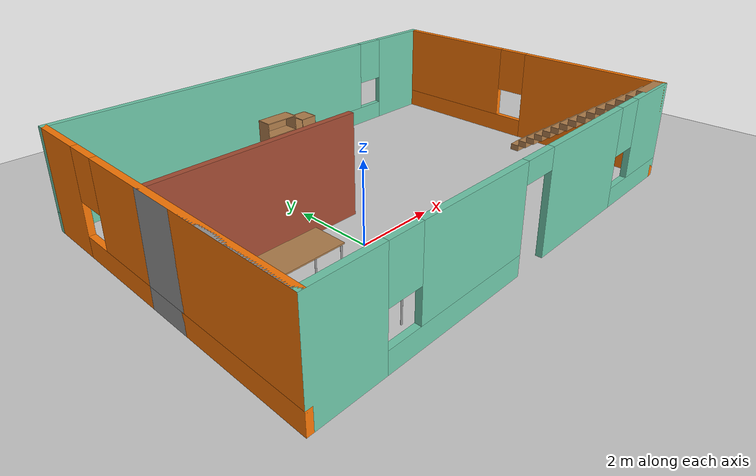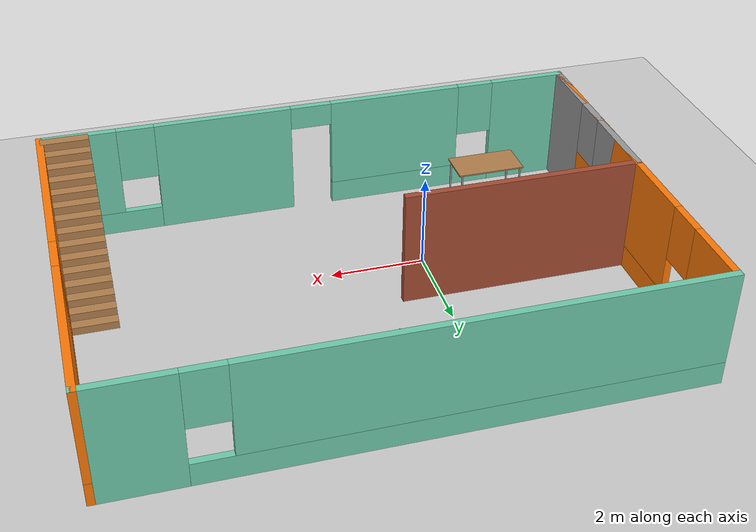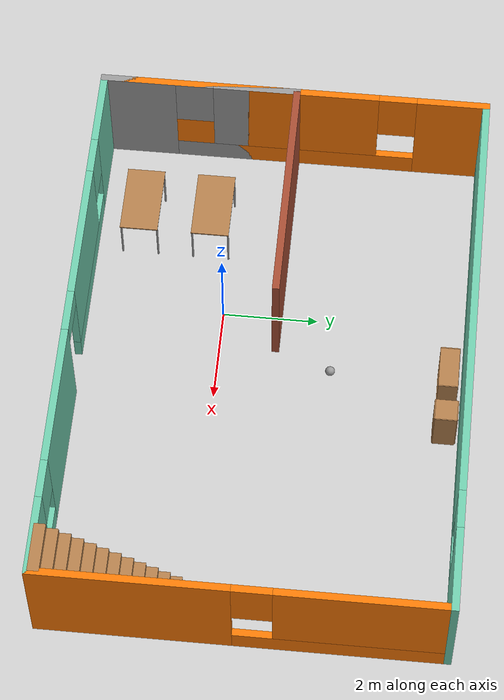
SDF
<sdf version="1.6">
 <world name="default">
  <plugin name="hello" filename="libhello.so"/>
  <light name="sun" type="directional">
   <pose>0 0 10 0 -0 0</pose>
   <diffuse>0.8 0.8 0.8 1</diffuse>
   <specular>0.2 0.2 0.2 1</specular>
   <attenuation>
    <range>1000</range>
    <constant>0.9</constant>
    <linear>0.01</linear>
    <quadratic>0.001</quadratic>
   </attenuation>
   <direction>-0.5 0.1 -0.9</direction>
  </light>
  <model name="ground_plane">
   <static>1</static>
   <link name="link">
    <collision name="collision">
     <geometry><plane><normal>0 0 1</normal><size>100 100</size></plane></geometry>
     <surface>
      <contact><collide_bitmask>65535</collide_bitmask></contact>
      <friction><ode><mu>100</mu><mu2>50</mu2></ode></friction>
     </surface>
    </collision>
    <visual name="visual">
     <cast_shadows>0</cast_shadows>
     <geometry><plane><normal>0 0 1</normal><size>100 100</size></plane></geometry>
     <material>
      <script><uri>file://media/materials/scripts/gazebo.material</uri><name>Gazebo/Grey</name></script>
     </material>
    </visual>
   </link>
  </model>
  <gravity>0 0 -9.8</gravity>
  <magnetic_field>6e-06 2.3e-05 -4.2e-05</magnetic_field>
  <atmosphere type="adiabatic"/>
  <physics name="default_physics" default="0" type="ode">
   <max_step_size>0.001</max_step_size>
   <real_time_factor>1</real_time_factor>
   <real_time_update_rate>1000</real_time_update_rate>
  </physics>
  <scene><ambient>0.4 0.4 0.4 1</ambient><background>0.7 0.7 0.7 1</background><shadows>1</shadows></scene>
  <audio><device>default</device></audio>
  <spherical_coordinates>
   <surface_model>EARTH_WGS84</surface_model>
   <latitude_deg>0</latitude_deg>
   <longitude_deg>0</longitude_deg>
   <elevation>0</elevation>
   <heading_deg>0</heading_deg>
  </spherical_coordinates>
  <model name="Wall">
   <pose>1.69 1.13 0 0 -0 0</pose>
   <link name="Stairs_0">
    <visual name="Stairs_0_Visual_0">
     <pose>5.29734 -0.669935 0.083333 0 -0 0</pose>
     <geometry><box><size>1 0.233333 0.166667</size></box></geometry>
     <material>
      <script><uri>file://media/materials/scripts/gazebo.material</uri><name>Gazebo/Wood</name></script>
      <ambient>1 1 1 1</ambient>
     </material>
     <meta><layer>0</layer></meta>
    </visual>
    <collision name="Stairs_0_Collision_0">
     <geometry><box><size>1 0.233333 0.166667</size></box></geometry>
     <pose>5.29734 -0.669935 0.083333 0 -0 0</pose>
    </collision>
    <visual name="Stairs_0_Visual_1">
     <pose>5.29734 -0.903268 0.25 0 -0 0</pose>
     <geometry><box><size>1 0.233333 0.166667</size></box></geometry>
     <material>
      <script><uri>file://media/materials/scripts/gazebo.material</uri><name>Gazebo/Wood</name></script>
      <ambient>1 1 1 1</ambient>
     </material>
     <meta><layer>0</layer></meta>
    </visual>
    <collision name="Stairs_0_Collision_1">
     <geometry><box><size>1 0.233333 0.166667</size></box></geometry>
     <pose>5.29734 -0.903268 0.25 0 -0 0</pose>
    </collision>
    <visual name="Stairs_0_Visual_2">
     <pose>5.29734 -1.1366 0.416667 0 -0 0</pose>
     <geometry><box><size>1 0.233333 0.166667</size></box></geometry>
     <material>
      <script><uri>file://media/materials/scripts/gazebo.material</uri><name>Gazebo/Wood</name></script>
      <ambient>1 1 1 1</ambient>
     </material>
     <meta><layer>0</layer></meta>
    </visual>
    <collision name="Stairs_0_Collision_2">
     <geometry><box><size>1 0.233333 0.166667</size></box></geometry>
     <pose>5.29734 -1.1366 0.416667 0 -0 0</pose>
    </collision>
    <visual name="Stairs_0_Visual_3">
     <pose>5.29734 -1.36993 0.583333 0 -0 0</pose>
     <geometry><box><size>1 0.233333 0.166667</size></box></geometry>
     <material>
      <script><uri>file://media/materials/scripts/gazebo.material</uri><name>Gazebo/Wood</name></script>
      <ambient>1 1 1 1</ambient>
     </material>
     <meta><layer>0</layer></meta>
    </visual>
    <collision name="Stairs_0_Collision_3">
     <geometry><box><size>1 0.233333 0.166667</size></box></geometry>
     <pose>5.29734 -1.36993 0.583333 0 -0 0</pose>
    </collision>
    <visual name="Stairs_0_Visual_4">
     <pose>5.29734 -1.60327 0.75 0 -0 0</pose>
     <geometry><box><size>1 0.233333 0.166667</size></box></geometry>
     <material>
      <script><uri>file://media/materials/scripts/gazebo.material</uri><name>Gazebo/Wood</name></script>
      <ambient>1 1 1 1</ambient>
     </material>
     <meta><layer>0</layer></meta>
    </visual>
    <collision name="Stairs_0_Collision_4">
     <geometry><box><size>1 0.233333 0.166667</size></box></geometry>
     <pose>5.29734 -1.60327 0.75 0 -0 0</pose>
    </collision>
    <visual name="Stairs_0_Visual_5">
     <pose>5.29734 -1.8366 0.916667 0 -0 0</pose>
     <geometry><box><size>1 0.233333 0.166667</size></box></geometry>
     <material>
      <script><uri>file://media/materials/scripts/gazebo.material</uri><name>Gazebo/Wood</name></script>
      <ambient>1 1 1 1</ambient>
     </material>
     <meta><layer>0</layer></meta>
    </visual>
    <collision name="Stairs_0_Collision_5">
     <geometry><box><size>1 0.233333 0.166667</size></box></geometry>
     <pose>5.29734 -1.8366 0.916667 0 -0 0</pose>
    </collision>
    <visual name="Stairs_0_Visual_6">
     <pose>5.29734 -2.06994 1.08333 0 -0 0</pose>
     <geometry><box><size>1 0.233333 0.166667</size></box></geometry>
     <material>
      <script><uri>file://media/materials/scripts/gazebo.material</uri><name>Gazebo/Wood</name></script>
      <ambient>1 1 1 1</ambient>
     </material>
     <meta><layer>0</layer></meta>
    </visual>
    <collision name="Stairs_0_Collision_6">
     <geometry><box><size>1 0.233333 0.166667</size></box></geometry>
     <pose>5.29734 -2.06994 1.08333 0 -0 0</pose>
    </collision>
    <visual name="Stairs_0_Visual_7">
     <pose>5.29734 -2.30327 1.25 0 -0 0</pose>
     <geometry><box><size>1 0.233333 0.166667</size></box></geometry>
     <material>
      <script><uri>file://media/materials/scripts/gazebo.material</uri><name>Gazebo/Wood</name></script>
      <ambient>1 1 1 1</ambient>
     </material>
     <meta><layer>0</layer></meta>
    </visual>
    <collision name="Stairs_0_Collision_7">
     <geometry><box><size>1 0.233333 0.166667</size></box></geometry>
     <pose>5.29734 -2.30327 1.25 0 -0 0</pose>
    </collision>
    <visual name="Stairs_0_Visual_8">
     <pose>5.29734 -2.5366 1.41667 0 -0 0</pose>
     <geometry><box><size>1 0.233333 0.166667</size></box></geometry>
     <material>
      <script><uri>file://media/materials/scripts/gazebo.material</uri><name>Gazebo/Wood</name></script>
      <ambient>1 1 1 1</ambient>
     </material>
     <meta><layer>0</layer></meta>
    </visual>
    <collision name="Stairs_0_Collision_8">
     <geometry><box><size>1 0.233333 0.166667</size></box></geometry>
     <pose>5.29734 -2.5366 1.41667 0 -0 0</pose>
    </collision>
    <visual name="Stairs_0_Visual_9">
     <pose>5.29734 -2.76993 1.58333 0 -0 0</pose>
     <geometry><box><size>1 0.233333 0.166667</size></box></geometry>
     <material>
      <script><uri>file://media/materials/scripts/gazebo.material</uri><name>Gazebo/Wood</name></script>
      <ambient>1 1 1 1</ambient>
     </material>
     <meta><layer>0</layer></meta>
    </visual>
    <collision name="Stairs_0_Collision_9">
     <geometry><box><size>1 0.233333 0.166667</size></box></geometry>
     <pose>5.29734 -2.76993 1.58333 0 -0 0</pose>
    </collision>
    <visual name="Stairs_0_Visual_10">
     <pose>5.29734 -3.00327 1.75 0 -0 0</pose>
     <geometry><box><size>1 0.233333 0.166667</size></box></geometry>
     <material>
      <script><uri>file://media/materials/scripts/gazebo.material</uri><name>Gazebo/Wood</name></script>
      <ambient>1 1 1 1</ambient>
     </material>
     <meta><layer>0</layer></meta>
    </visual>
    <collision name="Stairs_0_Collision_10">
     <geometry><box><size>1 0.233333 0.166667</size></box></geometry>
     <pose>5.29734 -3.00327 1.75 0 -0 0</pose>
    </collision>
    <visual name="Stairs_0_Visual_11">
     <pose>5.29734 -3.2366 1.91667 0 -0 0</pose>
     <geometry><box><size>1 0.233333 0.166667</size></box></geometry>
     <material>
      <script><uri>file://media/materials/scripts/gazebo.material</uri><name>Gazebo/Wood</name></script>
      <ambient>1 1 1 1</ambient>
     </material>
     <meta><layer>0</layer></meta>
    </visual>
    <collision name="Stairs_0_Collision_11">
     <geometry><box><size>1 0.233333 0.166667</size></box></geometry>
     <pose>5.29734 -3.2366 1.91667 0 -0 0</pose>
    </collision>
    <visual name="Stairs_0_Visual_12">
     <pose>5.29734 -3.46993 2.08333 0 -0 0</pose>
     <geometry><box><size>1 0.233333 0.166667</size></box></geometry>
     <material>
      <script><uri>file://media/materials/scripts/gazebo.material</uri><name>Gazebo/Wood</name></script>
      <ambient>1 1 1 1</ambient>
     </material>
     <meta><layer>0</layer></meta>
    </visual>
    <collision name="Stairs_0_Collision_12">
     <geometry><box><size>1 0.233333 0.166667</size></box></geometry>
     <pose>5.29734 -3.46993 2.08333 0 -0 0</pose>
    </collision>
    <visual name="Stairs_0_Visual_13">
     <pose>5.29734 -3.70327 2.25 0 -0 0</pose>
     <geometry><box><size>1 0.233333 0.166667</size></box></geometry>
     <material>
      <script><uri>file://media/materials/scripts/gazebo.material</uri><name>Gazebo/Wood</name></script>
      <ambient>1 1 1 1</ambient>
     </material>
     <meta><layer>0</layer></meta>
    </visual>
    <collision name="Stairs_0_Collision_13">
     <geometry><box><size>1 0.233333 0.166667</size></box></geometry>
     <pose>5.29734 -3.70327 2.25 0 -0 0</pose>
    </collision>
    <visual name="Stairs_0_Visual_14">
     <pose>5.29734 -3.9366 2.41667 0 -0 0</pose>
     <geometry><box><size>1 0.233333 0.166667</size></box></geometry>
     <material>
      <script><uri>file://media/materials/scripts/gazebo.material</uri><name>Gazebo/Wood</name></script>
      <ambient>1 1 1 1</ambient>
     </material>
     <meta><layer>0</layer></meta>
    </visual>
    <collision name="Stairs_0_Collision_14">
     <geometry><box><size>1 0.233333 0.166667</size></box></geometry>
     <pose>5.29734 -3.9366 2.41667 0 -0 0</pose>
    </collision>
   </link>
   <link name="Wall_0">
    <pose>0 -4.05 0 0 -0 0</pose>
    <visual name="Wall_0_Visual_0">
     <pose>-5.0275 0 1.25 0 -0 0</pose>
     <geometry><box><size>1.695 0.15 2.5</size></box></geometry>
     <material>
      <script><uri>file://media/materials/scripts/gazebo.material</uri><name>Gazebo/Grey</name></script>
      <ambient>0.435294 0.796078 0.67451 1</ambient>
     </material>
     <meta><layer>0</layer></meta>
    </visual>
    <collision name="Wall_0_Collision_0">
     <geometry><box><size>1.695 0.15 2.5</size></box></geometry>
     <pose>-5.0275 0 1.25 0 -0 0</pose>
    </collision>
    <visual name="Wall_0_Visual_1">
     <pose>1.94676 0 1.25 0 -0 0</pose>
     <geometry><box><size>2.96283 0.15 2.5</size></box></geometry>
     <material>
      <script><uri>file://media/materials/scripts/gazebo.material</uri><name>Gazebo/Grey</name></script>
      <ambient>0.435294 0.796078 0.67451 1</ambient>
     </material>
     <meta><layer>0</layer></meta>
    </visual>
    <collision name="Wall_0_Collision_1">
     <geometry><box><size>2.96283 0.15 2.5</size></box></geometry>
     <pose>1.94676 0 1.25 0 -0 0</pose>
    </collision>
    <visual name="Wall_0_Visual_2">
     <pose>-2.30733 0 0.25 0 -0 0</pose>
     <geometry><box><size>3.74534 0.15 0.5</size></box></geometry>
     <material>
      <script><uri>file://media/materials/scripts/gazebo.material</uri><name>Gazebo/Grey</name></script>
      <ambient>0.435294 0.796078 0.67451 1</ambient>
     </material>
     <meta><layer>0</layer></meta>
    </visual>
    <collision name="Wall_0_Collision_2">
     <geometry><box><size>3.74534 0.15 0.5</size></box></geometry>
     <pose>-2.30733 0 0.25 0 -0 0</pose>
    </collision>
    <visual name="Wall_0_Visual_3">
     <pose>4.65159 0 0.25 0 -0 0</pose>
     <geometry><box><size>2.44683 0.15 0.5</size></box></geometry>
     <material>
      <script><uri>file://media/materials/scripts/gazebo.material</uri><name>Gazebo/Grey</name></script>
      <ambient>0.435294 0.796078 0.67451 1</ambient>
     </material>
     <meta><layer>0</layer></meta>
    </visual>
    <collision name="Wall_0_Collision_3">
     <geometry><box><size>2.44683 0.15 0.5</size></box></geometry>
     <pose>4.65159 0 0.25 0 -0 0</pose>
    </collision>
    <visual name="Wall_0_Visual_4">
     <pose>-1.90733 0 1.5 0 -0 0</pose>
     <geometry><box><size>2.94534 0.15 2</size></box></geometry>
     <material>
      <script><uri>file://media/materials/scripts/gazebo.material</uri><name>Gazebo/Grey</name></script>
      <ambient>0.435294 0.796078 0.67451 1</ambient>
     </material>
     <meta><layer>0</layer></meta>
    </visual>
    <collision name="Wall_0_Collision_4">
     <geometry><box><size>2.94534 0.15 2</size></box></geometry>
     <pose>-1.90733 0 1.5 0 -0 0</pose>
    </collision>
    <visual name="Wall_0_Visual_5">
     <pose>-1.90733 0 1.5 0 -0 0</pose>
     <geometry><box><size>2.94534 0.15 2</size></box></geometry>
     <material>
      <script><uri>file://media/materials/scripts/gazebo.material</uri><name>Gazebo/Grey</name></script>
      <ambient>0.435294 0.796078 0.67451 1</ambient>
     </material>
     <meta><layer>0</layer></meta>
    </visual>
    <collision name="Wall_0_Collision_5">
     <geometry><box><size>2.94534 0.15 2</size></box></geometry>
     <pose>-1.90733 0 1.5 0 -0 0</pose>
    </collision>
    <visual name="Wall_0_Visual_6">
     <pose>5.05159 0 1.5 0 -0 0</pose>
     <geometry><box><size>1.64683 0.15 2</size></box></geometry>
     <material>
      <script><uri>file://media/materials/scripts/gazebo.material</uri><name>Gazebo/Grey</name></script>
      <ambient>0.435294 0.796078 0.67451 1</ambient>
     </material>
     <meta><layer>0</layer></meta>
    </visual>
    <collision name="Wall_0_Collision_6">
     <geometry><box><size>1.64683 0.15 2</size></box></geometry>
     <pose>5.05159 0 1.5 0 -0 0</pose>
    </collision>
    <visual name="Wall_0_Visual_7">
     <pose>-3.78001 0 1.9 0 -0 0</pose>
     <geometry><box><size>0.8 0.15 1.2</size></box></geometry>
     <material>
      <script><uri>file://media/materials/scripts/gazebo.material</uri><name>Gazebo/Grey</name></script>
      <ambient>0.435294 0.796078 0.67451 1</ambient>
     </material>
     <meta><layer>0</layer></meta>
    </visual>
    <collision name="Wall_0_Collision_7">
     <geometry><box><size>0.8 0.15 1.2</size></box></geometry>
     <pose>-3.78001 0 1.9 0 -0 0</pose>
    </collision>
    <visual name="Wall_0_Visual_8">
     <pose>3.82817 0 1.9 0 -0 0</pose>
     <geometry><box><size>0.8 0.15 1.2</size></box></geometry>
     <material>
      <script><uri>file://media/materials/scripts/gazebo.material</uri><name>Gazebo/Grey</name></script>
      <ambient>0.435294 0.796078 0.67451 1</ambient>
     </material>
     <meta><layer>0</layer></meta>
    </visual>
    <collision name="Wall_0_Collision_8">
     <geometry><box><size>0.8 0.15 1.2</size></box></geometry>
     <pose>3.82817 0 1.9 0 -0 0</pose>
    </collision>
    <visual name="Wall_0_Visual_9">
     <pose>0.015339 0 2.25 0 -0 0</pose>
     <geometry><box><size>0.9 0.15 0.5</size></box></geometry>
     <material>
      <script><uri>file://media/materials/scripts/gazebo.material</uri><name>Gazebo/Grey</name></script>
      <ambient>0.435294 0.796078 0.67451 1</ambient>
     </material>
     <meta><layer>0</layer></meta>
    </visual>
    <collision name="Wall_0_Collision_9">
     <geometry><box><size>0.9 0.15 0.5</size></box></geometry>
     <pose>0.015339 0 2.25 0 -0 0</pose>
    </collision>
    <visual name="Wall_0_Visual_10">
     <pose>0.015339 0 2.25 0 -0 0</pose>
     <geometry><box><size>0.9 0.15 0.5</size></box></geometry>
     <material>
      <script><uri>file://media/materials/scripts/gazebo.material</uri><name>Gazebo/Grey</name></script>
      <ambient>0.435294 0.796078 0.67451 1</ambient>
     </material>
     <meta><layer>0</layer></meta>
    </visual>
    <collision name="Wall_0_Collision_10">
     <geometry><box><size>0.9 0.15 0.5</size></box></geometry>
     <pose>0.015339 0 2.25 0 -0 0</pose>
    </collision>
   </link>
   <link name="Wall_1">
    <pose>5.8 -0 0 0 -0 1.5708</pose>
    <visual name="Wall_1_Visual_0">
     <pose>-2.15485 0 1.25 0 -0 0</pose>
     <geometry><box><size>3.9403 0.15 2.5</size></box></geometry>
     <material>
      <script><uri>file://media/materials/scripts/gazebo.material</uri><name>Gazebo/Grey</name></script>
      <ambient>0.996078 0.47451 0.0196078 1</ambient>
     </material>
     <meta><layer>0</layer></meta>
    </visual>
    <collision name="Wall_1_Collision_0">
     <geometry><box><size>3.9403 0.15 2.5</size></box></geometry>
     <pose>-2.15485 0 1.25 0 -0 0</pose>
    </collision>
    <visual name="Wall_1_Visual_1">
     <pose>1.97015 0 0.25 0 -0 0</pose>
     <geometry><box><size>4.3097 0.15 0.5</size></box></geometry>
     <material>
      <script><uri>file://media/materials/scripts/gazebo.material</uri><name>Gazebo/Grey</name></script>
      <ambient>0.996078 0.47451 0.0196078 1</ambient>
     </material>
     <meta><layer>0</layer></meta>
    </visual>
    <collision name="Wall_1_Collision_1">
     <geometry><box><size>4.3097 0.15 0.5</size></box></geometry>
     <pose>1.97015 0 0.25 0 -0 0</pose>
    </collision>
    <visual name="Wall_1_Visual_2">
     <pose>2.37015 0 1.5 0 -0 0</pose>
     <geometry><box><size>3.5097 0.15 2</size></box></geometry>
     <material>
      <script><uri>file://media/materials/scripts/gazebo.material</uri><name>Gazebo/Grey</name></script>
      <ambient>0.996078 0.47451 0.0196078 1</ambient>
     </material>
     <meta><layer>0</layer></meta>
    </visual>
    <collision name="Wall_1_Collision_2">
     <geometry><box><size>3.5097 0.15 2</size></box></geometry>
     <pose>2.37015 0 1.5 0 -0 0</pose>
    </collision>
    <visual name="Wall_1_Visual_3">
     <pose>0.215301 0 1.9 0 -0 0</pose>
     <geometry><box><size>0.8 0.15 1.2</size></box></geometry>
     <material>
      <script><uri>file://media/materials/scripts/gazebo.material</uri><name>Gazebo/Grey</name></script>
      <ambient>0.996078 0.47451 0.0196078 1</ambient>
     </material>
     <meta><layer>0</layer></meta>
    </visual>
    <collision name="Wall_1_Collision_3">
     <geometry><box><size>0.8 0.15 1.2</size></box></geometry>
     <pose>0.215301 0 1.9 0 -0 0</pose>
    </collision>
   </link>
   <link name="Wall_2">
    <pose>0 4.05 0 0 -0 3.14159</pose>
    <visual name="Wall_2_Visual_0">
     <pose>-4.99912 0 1.25 0 -0 0</pose>
     <geometry><box><size>1.75177 0.15 2.5</size></box></geometry>
     <material>
      <script><uri>file://media/materials/scripts/gazebo.material</uri><name>Gazebo/Grey</name></script>
      <ambient>0.435294 0.796078 0.67451 1</ambient>
     </material>
     <meta><layer>0</layer></meta>
    </visual>
    <collision name="Wall_2_Collision_0">
     <geometry><box><size>1.75177 0.15 2.5</size></box></geometry>
     <pose>-4.99912 0 1.25 0 -0 0</pose>
    </collision>
    <visual name="Wall_2_Visual_1">
     <pose>0.875884 0 0.25 0 -0 0</pose>
     <geometry><box><size>9.99823 0.15 0.5</size></box></geometry>
     <material>
      <script><uri>file://media/materials/scripts/gazebo.material</uri><name>Gazebo/Grey</name></script>
      <ambient>0.435294 0.796078 0.67451 1</ambient>
     </material>
     <meta><layer>0</layer></meta>
    </visual>
    <collision name="Wall_2_Collision_1">
     <geometry><box><size>9.99823 0.15 0.5</size></box></geometry>
     <pose>0.875884 0 0.25 0 -0 0</pose>
    </collision>
    <visual name="Wall_2_Visual_2">
     <pose>1.27588 0 1.5 0 -0 0</pose>
     <geometry><box><size>9.19823 0.15 2</size></box></geometry>
     <material>
      <script><uri>file://media/materials/scripts/gazebo.material</uri><name>Gazebo/Grey</name></script>
      <ambient>0.435294 0.796078 0.67451 1</ambient>
     </material>
     <meta><layer>0</layer></meta>
    </visual>
    <collision name="Wall_2_Collision_2">
     <geometry><box><size>9.19823 0.15 2</size></box></geometry>
     <pose>1.27588 0 1.5 0 -0 0</pose>
    </collision>
    <visual name="Wall_2_Visual_3">
     <pose>-3.72323 0 1.9 0 -0 0</pose>
     <geometry><box><size>0.8 0.15 1.2</size></box></geometry>
     <material>
      <script><uri>file://media/materials/scripts/gazebo.material</uri><name>Gazebo/Grey</name></script>
      <ambient>0.435294 0.796078 0.67451 1</ambient>
     </material>
     <meta><layer>0</layer></meta>
    </visual>
    <collision name="Wall_2_Collision_3">
     <geometry><box><size>0.8 0.15 1.2</size></box></geometry>
     <pose>-3.72323 0 1.9 0 -0 0</pose>
    </collision>
   </link>
   <link name="Wall_3">
    <pose>-5.8 -0 0 0 -0 -1.5708</pose>
    <visual name="Wall_3_Visual_0">
     <pose>-3.35834 0 1.25 0 -0 0</pose>
     <geometry><box><size>1.53332 0.15 2.5</size></box></geometry>
     <material>
      <script><uri>file://media/materials/scripts/gazebo.material</uri><name>Gazebo/Grey</name></script>
      <ambient>0.996078 0.47451 0.0196078 1</ambient>
     </material>
     <meta><layer>0</layer></meta>
    </visual>
    <collision name="Wall_3_Collision_0">
     <geometry><box><size>1.53332 0.15 2.5</size></box></geometry>
     <pose>-3.35834 0 1.25 0 -0 0</pose>
    </collision>
    <visual name="Wall_3_Visual_1">
     <pose>0.766661 0 0.25 0 -0 0</pose>
     <geometry><box><size>6.71668 0.15 0.5</size></box></geometry>
     <material>
      <script><uri>file://media/materials/scripts/gazebo.material</uri><name>Gazebo/Grey</name></script>
      <ambient>0.996078 0.47451 0.0196078 1</ambient>
     </material>
     <meta><layer>0</layer></meta>
    </visual>
    <collision name="Wall_3_Collision_1">
     <geometry><box><size>6.71668 0.15 0.5</size></box></geometry>
     <pose>0.766661 0 0.25 0 -0 0</pose>
    </collision>
    <visual name="Wall_3_Visual_2">
     <pose>1.16666 0 1.5 0 -0 0</pose>
     <geometry><box><size>5.91668 0.15 2</size></box></geometry>
     <material>
      <script><uri>file://media/materials/scripts/gazebo.material</uri><name>Gazebo/Grey</name></script>
      <ambient>0.996078 0.47451 0.0196078 1</ambient>
     </material>
     <meta><layer>0</layer></meta>
    </visual>
    <collision name="Wall_3_Collision_2">
     <geometry><box><size>5.91668 0.15 2</size></box></geometry>
     <pose>1.16666 0 1.5 0 -0 0</pose>
    </collision>
    <visual name="Wall_3_Visual_3">
     <pose>-2.19168 0 1.9 0 -0 0</pose>
     <geometry><box><size>0.8 0.15 1.2</size></box></geometry>
     <material>
      <script><uri>file://media/materials/scripts/gazebo.material</uri><name>Gazebo/Grey</name></script>
      <ambient>0.996078 0.47451 0.0196078 1</ambient>
     </material>
     <meta><layer>0</layer></meta>
    </visual>
    <collision name="Wall_3_Collision_3">
     <geometry><box><size>0.8 0.15 1.2</size></box></geometry>
     <pose>-2.19168 0 1.9 0 -0 0</pose>
    </collision>
   </link>
   <link name="Wall_4">
    <pose>-5.8 -2 0 0 -0 1.5708</pose>
    <visual name="Wall_4_Visual_0">
     <pose>-1.32668 0 1.25 0 -0 0</pose>
     <geometry><box><size>1.59663 0.15 2.5</size></box></geometry>
     <material>
      <script><uri>file://media/materials/scripts/gazebo.material</uri><name>Gazebo/Grey</name></script>
      <ambient>1 1 1 1</ambient>
     </material>
     <meta><layer>0</layer></meta>
    </visual>
    <collision name="Wall_4_Collision_0">
     <geometry><box><size>1.59663 0.15 2.5</size></box></geometry>
     <pose>-1.32668 0 1.25 0 -0 0</pose>
    </collision>
    <visual name="Wall_4_Visual_1">
     <pose>0.798316 0 0.25 0 -0 0</pose>
     <geometry><box><size>2.65337 0.15 0.5</size></box></geometry>
     <material>
      <script><uri>file://media/materials/scripts/gazebo.material</uri><name>Gazebo/Grey</name></script>
      <ambient>1 1 1 1</ambient>
     </material>
     <meta><layer>0</layer></meta>
    </visual>
    <collision name="Wall_4_Collision_1">
     <geometry><box><size>2.65337 0.15 0.5</size></box></geometry>
     <pose>0.798316 0 0.25 0 -0 0</pose>
    </collision>
    <visual name="Wall_4_Visual_2">
     <pose>1.19832 0 1.5 0 -0 0</pose>
     <geometry><box><size>1.85337 0.15 2</size></box></geometry>
     <material>
      <script><uri>file://media/materials/scripts/gazebo.material</uri><name>Gazebo/Grey</name></script>
      <ambient>1 1 1 1</ambient>
     </material>
     <meta><layer>0</layer></meta>
    </visual>
    <collision name="Wall_4_Collision_2">
     <geometry><box><size>1.85337 0.15 2</size></box></geometry>
     <pose>1.19832 0 1.5 0 -0 0</pose>
    </collision>
    <visual name="Wall_4_Visual_3">
     <pose>-0.128367 0 1.9 0 -0 0</pose>
     <geometry><box><size>0.8 0.15 1.2</size></box></geometry>
     <material>
      <script><uri>file://media/materials/scripts/gazebo.material</uri><name>Gazebo/Grey</name></script>
      <ambient>1 1 1 1</ambient>
     </material>
     <meta><layer>0</layer></meta>
    </visual>
    <collision name="Wall_4_Collision_3">
     <geometry><box><size>0.8 0.15 1.2</size></box></geometry>
     <pose>-0.128367 0 1.9 0 -0 0</pose>
    </collision>
   </link>
   <link name="Wall_5">
    <collision name="Wall_5_Collision">
     <geometry><box><size>5 0.15 2.5</size></box></geometry>
     <pose>0 0 1.25 0 -0 0</pose>
    </collision>
    <visual name="Wall_5_Visual">
     <pose>0 0 1.25 0 -0 0</pose>
     <geometry><box><size>5 0.15 2.5</size></box></geometry>
     <material>
      <script><uri>file://media/materials/scripts/gazebo.material</uri><name>Gazebo/Bricks</name></script>
      <ambient>1 1 1 1</ambient>
     </material>
     <meta><layer>0</layer></meta>
    </visual>
    <pose>-3.375 0.05 0 0 -0 0</pose>
   </link>
   <static>1</static>
  </model>
  <model name="table">
   <static>1</static>
   <link name="link">
    <collision name="surface">
     <pose>0 0 1 0 -0 0</pose>
     <geometry><box><size>1.5 0.8 0.03</size></box></geometry>
     <surface><friction><ode><mu>0.6</mu><mu2>0.6</mu2></ode></friction></surface>
    </collision>
    <visual name="visual1">
     <pose>0 0 1 0 -0 0</pose>
     <geometry><box><size>1.5 0.8 0.03</size></box></geometry>
     <material>
      <script><uri>file://media/materials/scripts/gazebo.material</uri><name>Gazebo/Wood</name></script>
     </material>
    </visual>
    <collision name="front_left_leg">
     <pose>0.68 0.38 0.5 0 -0 0</pose>
     <geometry><cylinder><radius>0.02</radius><length>1</length></cylinder></geometry>
    </collision>
    <visual name="front_left_leg">
     <pose>0.68 0.38 0.5 0 -0 0</pose>
     <geometry><cylinder><radius>0.02</radius><length>1</length></cylinder></geometry>
     <material>
      <script><uri>file://media/materials/scripts/gazebo.material</uri><name>Gazebo/Grey</name></script>
     </material>
    </visual>
    <collision name="front_right_leg">
     <pose>0.68 -0.38 0.5 0 -0 0</pose>
     <geometry><cylinder><radius>0.02</radius><length>1</length></cylinder></geometry>
    </collision>
    <visual name="front_right_leg">
     <pose>0.68 -0.38 0.5 0 -0 0</pose>
     <geometry><cylinder><radius>0.02</radius><length>1</length></cylinder></geometry>
     <material>
      <script><uri>file://media/materials/scripts/gazebo.material</uri><name>Gazebo/Grey</name></script>
     </material>
    </visual>
    <collision name="back_right_leg">
     <pose>-0.68 -0.38 0.5 0 -0 0</pose>
     <geometry><cylinder><radius>0.02</radius><length>1</length></cylinder></geometry>
    </collision>
    <visual name="back_right_leg">
     <pose>-0.68 -0.38 0.5 0 -0 0</pose>
     <geometry><cylinder><radius>0.02</radius><length>1</length></cylinder></geometry>
     <material>
      <script><uri>file://media/materials/scripts/gazebo.material</uri><name>Gazebo/Grey</name></script>
     </material>
    </visual>
    <collision name="back_left_leg">
     <pose>-0.68 0.38 0.5 0 -0 0</pose>
     <geometry><cylinder><radius>0.02</radius><length>1</length></cylinder></geometry>
    </collision>
    <visual name="back_left_leg">
     <pose>-0.68 0.38 0.5 0 -0 0</pose>
     <geometry><cylinder><radius>0.02</radius><length>1</length></cylinder></geometry>
     <material>
      <script><uri>file://media/materials/scripts/gazebo.material</uri><name>Gazebo/Grey</name></script>
     </material>
    </visual>
   </link>
   <pose>-2.08223 -1.9263 0 0 -0 0</pose>
  </model>
  <model name="table_0">
   <static>1</static>
   <link name="link">
    <collision name="surface">
     <pose>0 0 1 0 -0 0</pose>
     <geometry><box><size>1.5 0.8 0.03</size></box></geometry>
     <surface><friction><ode><mu>0.6</mu><mu2>0.6</mu2></ode></friction></surface>
    </collision>
    <visual name="visual1">
     <pose>0 0 1 0 -0 0</pose>
     <geometry><box><size>1.5 0.8 0.03</size></box></geometry>
     <material>
      <script><uri>file://media/materials/scripts/gazebo.material</uri><name>Gazebo/Wood</name></script>
     </material>
    </visual>
    <collision name="front_left_leg">
     <pose>0.68 0.38 0.5 0 -0 0</pose>
     <geometry><cylinder><radius>0.02</radius><length>1</length></cylinder></geometry>
    </collision>
    <visual name="front_left_leg">
     <pose>0.68 0.38 0.5 0 -0 0</pose>
     <geometry><cylinder><radius>0.02</radius><length>1</length></cylinder></geometry>
     <material>
      <script><uri>file://media/materials/scripts/gazebo.material</uri><name>Gazebo/Grey</name></script>
     </material>
    </visual>
    <collision name="front_right_leg">
     <pose>0.68 -0.38 0.5 0 -0 0</pose>
     <geometry><cylinder><radius>0.02</radius><length>1</length></cylinder></geometry>
    </collision>
    <visual name="front_right_leg">
     <pose>0.68 -0.38 0.5 0 -0 0</pose>
     <geometry><cylinder><radius>0.02</radius><length>1</length></cylinder></geometry>
     <material>
      <script><uri>file://media/materials/scripts/gazebo.material</uri><name>Gazebo/Grey</name></script>
     </material>
    </visual>
    <collision name="back_right_leg">
     <pose>-0.68 -0.38 0.5 0 -0 0</pose>
     <geometry><cylinder><radius>0.02</radius><length>1</length></cylinder></geometry>
    </collision>
    <visual name="back_right_leg">
     <pose>-0.68 -0.38 0.5 0 -0 0</pose>
     <geometry><cylinder><radius>0.02</radius><length>1</length></cylinder></geometry>
     <material>
      <script><uri>file://media/materials/scripts/gazebo.material</uri><name>Gazebo/Grey</name></script>
     </material>
    </visual>
    <collision name="back_left_leg">
     <pose>-0.68 0.38 0.5 0 -0 0</pose>
     <geometry><cylinder><radius>0.02</radius><length>1</length></cylinder></geometry>
    </collision>
    <visual name="back_left_leg">
     <pose>-0.68 0.38 0.5 0 -0 0</pose>
     <geometry><cylinder><radius>0.02</radius><length>1</length></cylinder></geometry>
     <material>
      <script><uri>file://media/materials/scripts/gazebo.material</uri><name>Gazebo/Grey</name></script>
     </material>
    </visual>
   </link>
   <pose>-2.07873 -0.415747 0 0 -0 0</pose>
  </model>
  <model name="cabinet">
   <static>1</static>
   <link name="cabinet_bottom_plate">
    <inertial>
     <pose>0 0 -1 0 -0 0</pose>
     <inertia><ixx>2.05</ixx><ixy>0</ixy><ixz>0</ixz><iyy>2.05</iyy><iyz>0</iyz><izz>2.05</izz></inertia>
     <mass>25</mass>
    </inertial>
    <collision name="cabinet_bottom_plate_geom">
     <pose>0 0 0.01 0 -0 0</pose>
     <geometry><box><size>0.45 0.45 0.02</size></box></geometry>
    </collision>
    <visual name="cabinet_bottom_plate_geom_visual">
     <pose>0 0 0.01 0 -0 0</pose>
     <geometry><box><size>0.45 0.45 0.02</size></box></geometry>
     <material>
      <script><uri>file://media/materials/scripts/gazebo.material</uri><name>Gazebo/Wood</name></script>
     </material>
    </visual>
    <collision name="cabinet_bottom_plate_geom_cabinet_back_plate">
     <pose>0.235 0 0.51 0 -0 0</pose>
     <geometry><box><size>0.02 0.45 1.02</size></box></geometry>
    </collision>
    <visual name="cabinet_bottom_plate_geom_cabinet_back_plate_visual">
     <pose>0.235 0 0.51 0 -0 0</pose>
     <geometry><box><size>0.02 0.45 1.02</size></box></geometry>
     <material>
      <script><uri>file://media/materials/scripts/gazebo.material</uri><name>Gazebo/Wood</name></script>
     </material>
    </visual>
    <collision name="cabinet_bottom_plate_geom_cabinet_left_plate">
     <pose>0 0.235 0.51 0 -0 0</pose>
     <geometry><box><size>0.45 0.02 1.02</size></box></geometry>
    </collision>
    <visual name="cabinet_bottom_plate_geom_cabinet_left_plate_visual">
     <pose>0 0.235 0.51 0 -0 0</pose>
     <geometry><box><size>0.45 0.02 1.02</size></box></geometry>
     <material>
      <script><uri>file://media/materials/scripts/gazebo.material</uri><name>Gazebo/Wood</name></script>
     </material>
    </visual>
    <collision name="cabinet_bottom_plate_geom_cabinet_middle_plate">
     <pose>0 0 0.51 0 -0 0</pose>
     <geometry><box><size>0.45 0.45 0.02</size></box></geometry>
    </collision>
    <visual name="cabinet_bottom_plate_geom_cabinet_middle_plate_visual">
     <pose>0 0 0.51 0 -0 0</pose>
     <geometry><box><size>0.45 0.45 0.02</size></box></geometry>
     <material>
      <script><uri>file://media/materials/scripts/gazebo.material</uri><name>Gazebo/Wood</name></script>
     </material>
    </visual>
    <collision name="cabinet_bottom_plate_geom_cabinet_right_plate">
     <pose>0 -0.235 0.51 0 -0 0</pose>
     <geometry><box><size>0.45 0.02 1.02</size></box></geometry>
    </collision>
    <visual name="cabinet_bottom_plate_geom_cabinet_right_plate_visual">
     <pose>0 -0.235 0.51 0 -0 0</pose>
     <geometry><box><size>0.45 0.02 1.02</size></box></geometry>
     <material>
      <script><uri>file://media/materials/scripts/gazebo.material</uri><name>Gazebo/Wood</name></script>
     </material>
    </visual>
    <collision name="cabinet_bottom_plate_geom_cabinet_top_plate">
     <pose>0 0 1.01 0 -0 0</pose>
     <geometry><box><size>0.45 0.45 0.02</size></box></geometry>
    </collision>
    <visual name="cabinet_bottom_plate_geom_cabinet_top_plate_visual">
     <pose>0 0 1.01 0 -0 0</pose>
     <geometry><box><size>0.45 0.45 0.02</size></box></geometry>
     <material>
      <script><uri>file://media/materials/scripts/gazebo.material</uri><name>Gazebo/Wood</name></script>
     </material>
    </visual>
   </link>
   <pose>2.44195 4.80774 0 0 -0 0</pose>
  </model>
  <model name="bookshelf">
   <static>1</static>
   <link name="link">
    <inertial><mass>1</mass></inertial>
    <collision name="back">
     <pose>0 0.005 0.6 0 -0 0</pose>
     <geometry><box><size>0.9 0.01 1.2</size></box></geometry>
    </collision>
    <visual name="visual1">
     <pose>0 0.005 0.6 0 -0 0</pose>
     <geometry><box><size>0.9 0.01 1.2</size></box></geometry>
     <material>
      <script><uri>file://media/materials/scripts/gazebo.material</uri><name>Gazebo/Wood</name></script>
     </material>
    </visual>
    <collision name="left_side">
     <pose>0.45 -0.195 0.6 0 -0 0</pose>
     <geometry><box><size>0.02 0.4 1.2</size></box></geometry>
    </collision>
    <visual name="visual2">
     <pose>0.45 -0.195 0.6 0 -0 0</pose>
     <geometry><box><size>0.02 0.4 1.2</size></box></geometry>
     <material>
      <script><uri>file://media/materials/scripts/gazebo.material</uri><name>Gazebo/Wood</name></script>
     </material>
    </visual>
    <collision name="right_side">
     <pose>-0.45 -0.195 0.6 0 -0 0</pose>
     <geometry><box><size>0.02 0.4 1.2</size></box></geometry>
    </collision>
    <visual name="visual3">
     <pose>-0.45 -0.195 0.6 0 -0 0</pose>
     <geometry><box><size>0.02 0.4 1.2</size></box></geometry>
     <material>
      <script><uri>file://media/materials/scripts/gazebo.material</uri><name>Gazebo/Wood</name></script>
     </material>
    </visual>
    <collision name="bottom">
     <pose>0 -0.195 0.03 0 -0 0</pose>
     <geometry><box><size>0.88 0.4 0.06</size></box></geometry>
    </collision>
    <visual name="visual4">
     <pose>0 -0.195 0.03 0 -0 0</pose>
     <geometry><box><size>0.88 0.4 0.06</size></box></geometry>
     <material>
      <script><uri>file://media/materials/scripts/gazebo.material</uri><name>Gazebo/Wood</name></script>
     </material>
    </visual>
    <collision name="top">
     <pose>0 -0.195 1.19 0 -0 0</pose>
     <geometry><box><size>0.88 0.4 0.02</size></box></geometry>
    </collision>
    <visual name="visual5">
     <pose>0 -0.195 1.19 0 -0 0</pose>
     <geometry><box><size>0.88 0.4 0.02</size></box></geometry>
     <material>
      <script><uri>file://media/materials/scripts/gazebo.material</uri><name>Gazebo/Wood</name></script>
     </material>
    </visual>
    <collision name="low_shelf">
     <pose>0 -0.195 0.43 0 -0 0</pose>
     <geometry><box><size>0.88 0.4 0.02</size></box></geometry>
    </collision>
    <visual name="visual6">
     <pose>0 -0.195 0.43 0 -0 0</pose>
     <geometry><box><size>0.88 0.4 0.02</size></box></geometry>
     <material>
      <script><uri>file://media/materials/scripts/gazebo.material</uri><name>Gazebo/Wood</name></script>
     </material>
    </visual>
    <collision name="high_shelf">
     <pose>0 -0.195 0.8 0 -0 0</pose>
     <geometry><box><size>0.88 0.4 0.02</size></box></geometry>
    </collision>
    <visual name="visual7">
     <pose>0 -0.195 0.8 0 -0 0</pose>
     <geometry><box><size>0.88 0.4 0.02</size></box></geometry>
     <material>
      <script><uri>file://media/materials/scripts/gazebo.material</uri><name>Gazebo/Wood</name></script>
     </material>
    </visual>
   </link>
   <pose>1.54688 4.99962 0 0 -0 0</pose>
  </model>
  <model name="my_ball">
   <link name="link_0">
    <inertial>
     <mass>1</mass>
     <inertia><ixx>0.1</ixx><ixy>0</ixy><ixz>0</ixz><iyy>0.1</iyy><iyz>0</iyz><izz>0.1</izz></inertia>
    </inertial>
    <visual name="visual">
     <geometry><sphere><radius>0.1</radius></sphere></geometry>
     <material>
      <lighting>1</lighting>
      <script><uri>file://media/materials/scripts/gazebo.material</uri><name>Gazebo/Grey</name></script>
      <shader type="vertex"><normal_map>__default__</normal_map></shader>
      <ambient>1 1 1 1</ambient>
      <diffuse>1 1 1 1</diffuse>
      <specular>1 1 1 1</specular>
      <emissive>1 1 1 1</emissive>
     </material>
    </visual>
    <collision name="collision">
     <geometry><sphere><radius>0.1</radius></sphere></geometry>
     <surface>
      <friction>
       <ode><mu>1</mu><mu2>1</mu2><fdir1>0 0 0</fdir1><slip1>0</slip1><slip2>0</slip2></ode>
       <torsional>
        <coefficient>1</coefficient>
        <patch_radius>0</patch_radius>
        <surface_radius>0</surface_radius>
        <use_patch_radius>1</use_patch_radius>
        <ode><slip>0</slip></ode>
       </torsional>
      </friction>
      <bounce><restitution_coefficient>0</restitution_coefficient><threshold>1e+06</threshold></bounce>
      <contact>
       <collide_without_contact>0</collide_without_contact>
       <collide_without_contact_bitmask>1</collide_without_contact_bitmask>
       <collide_bitmask>1</collide_bitmask>
       <ode>
        <soft_cfm>0</soft_cfm>
        <soft_erp>0.2</soft_erp>
        <kp>1e+13</kp>
        <kd>1</kd>
        <max_vel>0.01</max_vel>
        <min_depth>0</min_depth>
       </ode>
       <bullet>
        <split_impulse>1</split_impulse>
        <split_impulse_penetration_threshold>-0.01</split_impulse_penetration_threshold>
        <soft_cfm>0</soft_cfm>
        <soft_erp>0.2</soft_erp>
        <kp>1e+13</kp>
        <kd>1</kd>
       </bullet>
      </contact>
     </surface>
    </collision>
   </link>
   <static>0</static>
   <pose>1.22958 2.36316 0.1 0 -0 0</pose>
  </model>
 </world>
</sdf>
